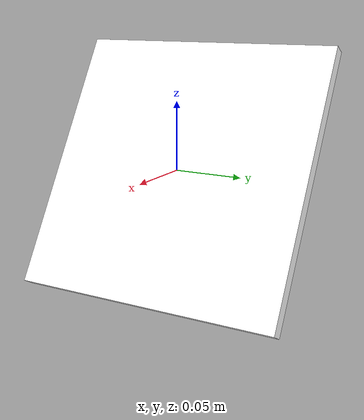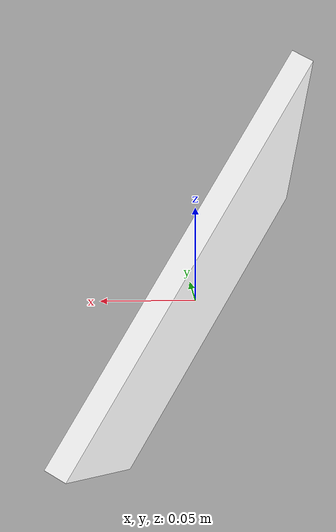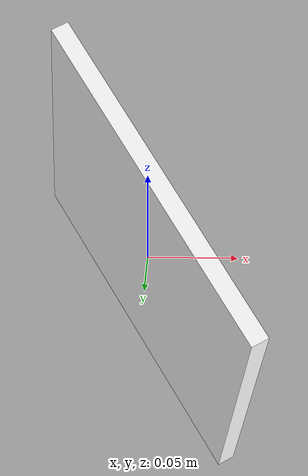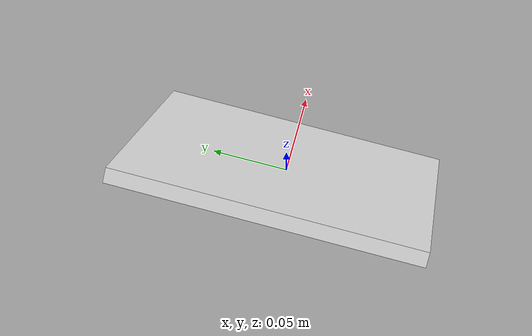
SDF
<?xml version="1.0"?>
<sdf version="1.7">
  <model name="WhyCode_3">
    <static>true</static>
    <link name="link">
      <pose>0 0 0 0 -2.0944 0</pose>
      <collision name="collision">
        <geometry>
          <box>
            <size>0.2 0.2 0.01</size>
          </box>
        </geometry>
      </collision>
      <visual name="visual">
        <geometry>
          <box>
            <size>0.2 0.2 0.01</size>
          </box>
        </geometry>
        <material>
          <ambient>1 1 1 1</ambient>
          <diffuse>1 1 1 1</diffuse>
          <specular>0 0 0 1</specular>
          <pbr>
            <metal>
              <albedo_map>model://whycode_3/materials/textures/whycode_4.png</albedo_map>
              <roughness>0.5</roughness>
              <metalness>0.0</metalness>
            </metal>
          </pbr>
          <!-- Fallback for Ogre 1.x -->
          <script>
            <uri>model://whycode_3/materials/scripts</uri>
            <uri>model://whycode_3/materials/textures</uri>
            <name>WhyCode_3/Marker</name>
          </script>
        </material>
      </visual>
    </link>
  </model>
</sdf>
